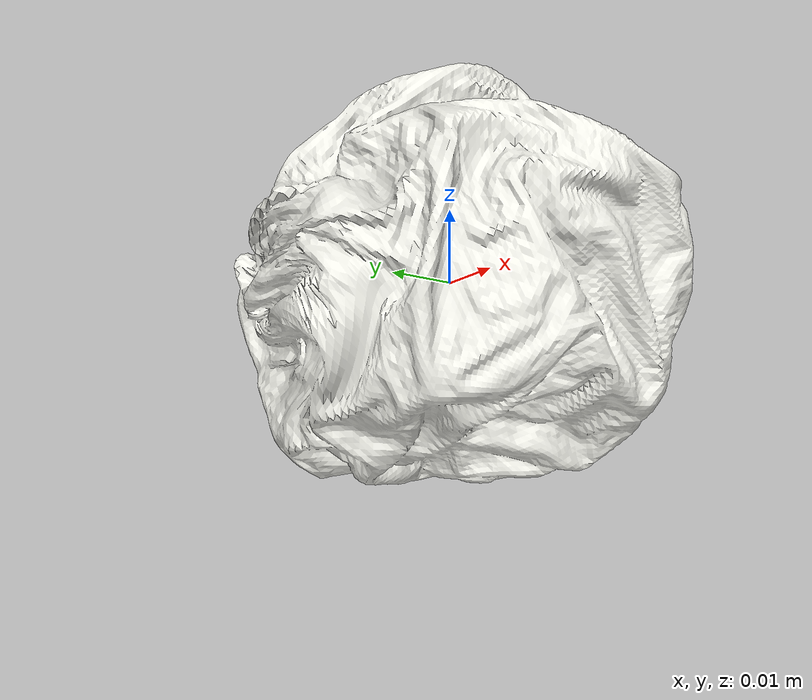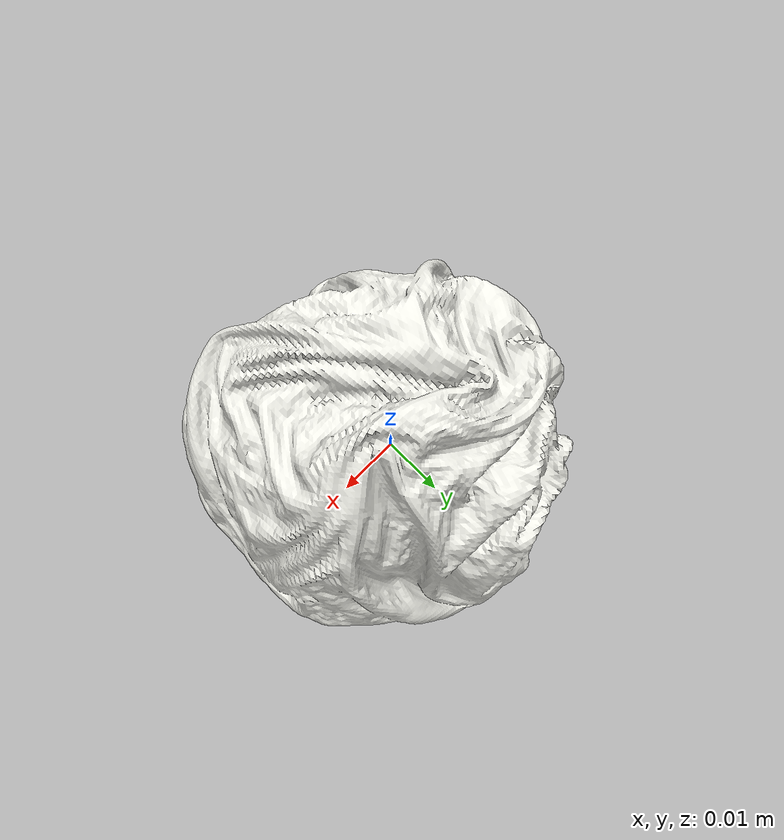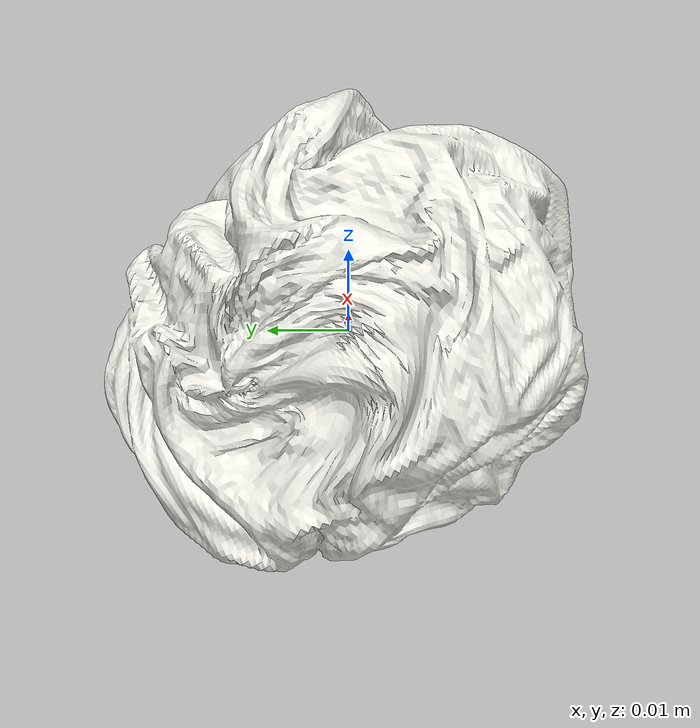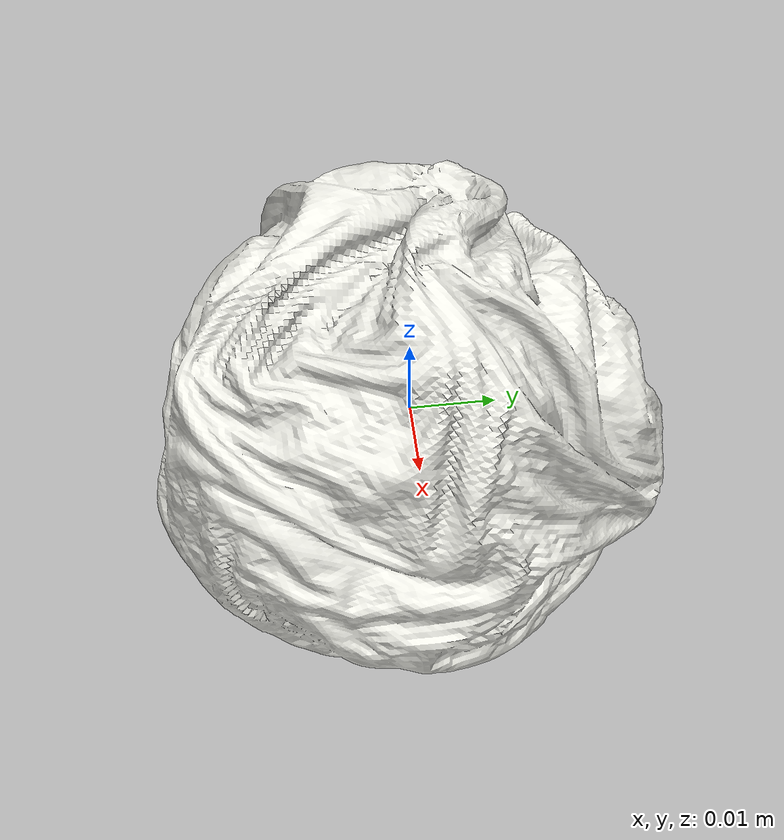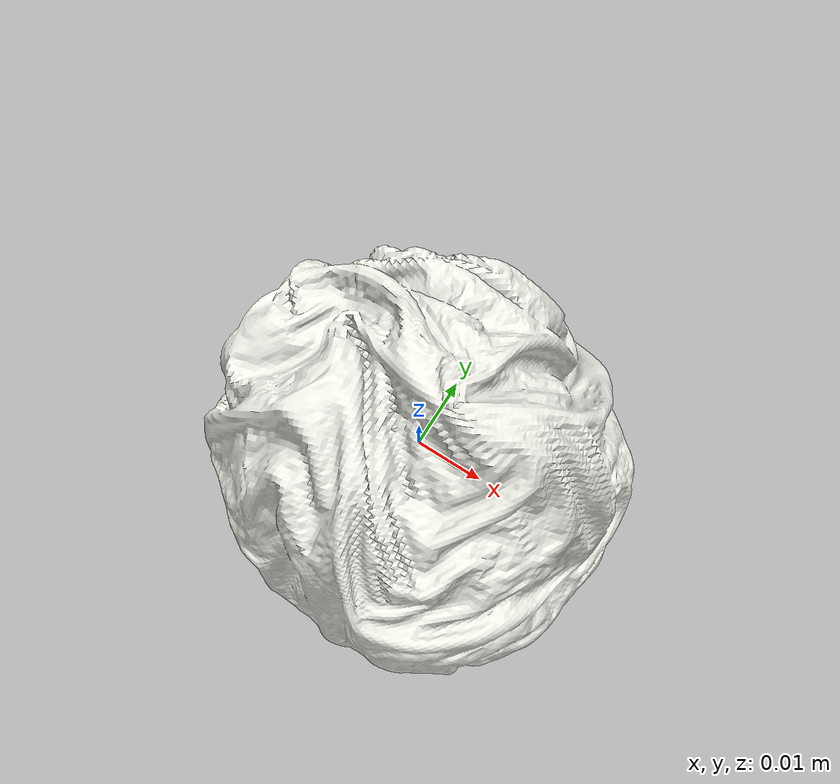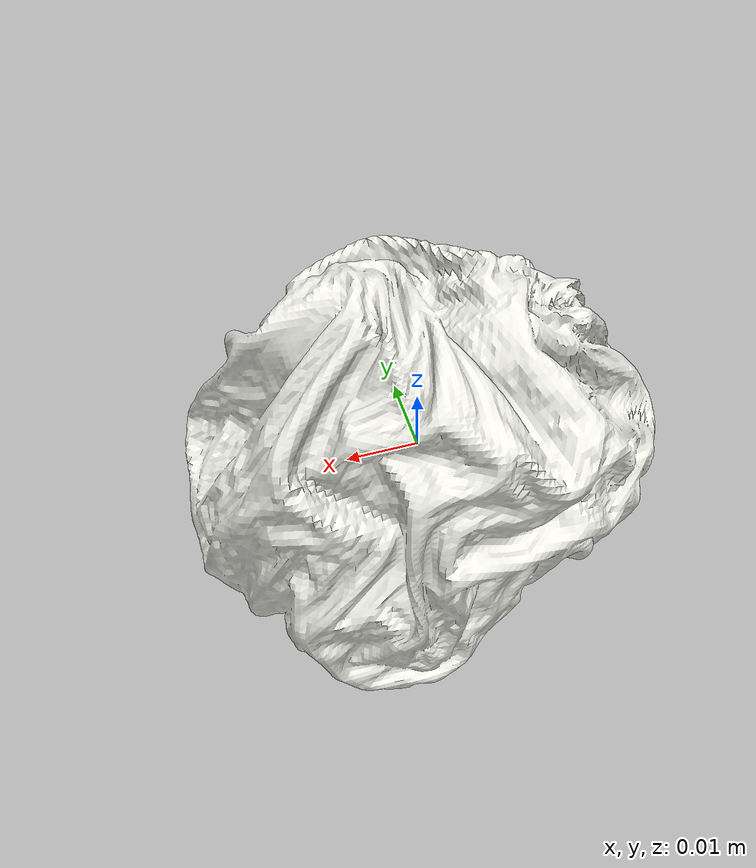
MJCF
<mujoco model="paper_ball">
  <default>
    <default class="visual">
      <geom group="2" type="mesh" contype="0" conaffinity="0" density="0"/>
    </default>
    <default class="collision">
      <geom
        group="3"
        type="mesh"
        rgba="0.8 0.8 0.8 0.0"
        density="45"
        friction="0.9 0.25 0.05"
        solimp="0.998 0.998 0.001"
        solref="0.001 1"
      />
    </default>
  </default>
  <asset>
    <material name="paper" specular="0.05" shininess="0.05" rgba="0.92 0.92 0.89 1"/>
    <mesh file="paper_ball.obj" scale="0.025 0.025 0.025"/>
    <mesh file="paper_ball_collision_0.obj" scale="0.025 0.025 0.025"/>
    <mesh file="paper_ball_collision_1.obj" scale="0.025 0.025 0.025"/>
    <mesh file="paper_ball_collision_2.obj" scale="0.025 0.025 0.025"/>
    <mesh file="paper_ball_collision_3.obj" scale="0.025 0.025 0.025"/>
    <mesh file="paper_ball_collision_4.obj" scale="0.025 0.025 0.025"/>
    <mesh file="paper_ball_collision_5.obj" scale="0.025 0.025 0.025"/>
    <mesh file="paper_ball_collision_6.obj" scale="0.025 0.025 0.025"/>
    <mesh file="paper_ball_collision_7.obj" scale="0.025 0.025 0.025"/>
    <mesh file="paper_ball_collision_8.obj" scale="0.025 0.025 0.025"/>
    <mesh file="paper_ball_collision_9.obj" scale="0.025 0.025 0.025"/>
    <mesh file="paper_ball_collision_10.obj" scale="0.025 0.025 0.025"/>
    <mesh file="paper_ball_collision_11.obj" scale="0.025 0.025 0.025"/>
    <mesh file="paper_ball_collision_12.obj" scale="0.025 0.025 0.025"/>
    <mesh file="paper_ball_collision_13.obj" scale="0.025 0.025 0.025"/>
    <mesh file="paper_ball_collision_14.obj" scale="0.025 0.025 0.025"/>
    <mesh file="paper_ball_collision_15.obj" scale="0.025 0.025 0.025"/>
  </asset>
  <worldbody>
    <body name="paper_ball">
      <freejoint/>
      <geom material="paper" mesh="paper_ball" class="visual"/>
      <geom mesh="paper_ball_collision_0" class="collision"/>
      <geom mesh="paper_ball_collision_1" class="collision"/>
      <geom mesh="paper_ball_collision_2" class="collision"/>
      <geom mesh="paper_ball_collision_3" class="collision"/>
      <geom mesh="paper_ball_collision_4" class="collision"/>
      <geom mesh="paper_ball_collision_5" class="collision"/>
      <geom mesh="paper_ball_collision_6" class="collision"/>
      <geom mesh="paper_ball_collision_7" class="collision"/>
      <geom mesh="paper_ball_collision_8" class="collision"/>
      <geom mesh="paper_ball_collision_9" class="collision"/>
      <geom mesh="paper_ball_collision_10" class="collision"/>
      <geom mesh="paper_ball_collision_11" class="collision"/>
      <geom mesh="paper_ball_collision_12" class="collision"/>
      <geom mesh="paper_ball_collision_13" class="collision"/>
      <geom mesh="paper_ball_collision_14" class="collision"/>
      <geom mesh="paper_ball_collision_15" class="collision"/>
      <site name="bottom_site" pos="0 0 -0.02906" size="0.005" rgba="0 0 0 0"/>
      <site name="top_site" pos="0 0 0.02906" size="0.005" rgba="0 0 0 0"/>
      <site name="horizontal_radius_site" pos="0.03066 0 0" size="0.005" rgba="0 0 0 0"/>
    </body>
  </worldbody>
</mujoco>
